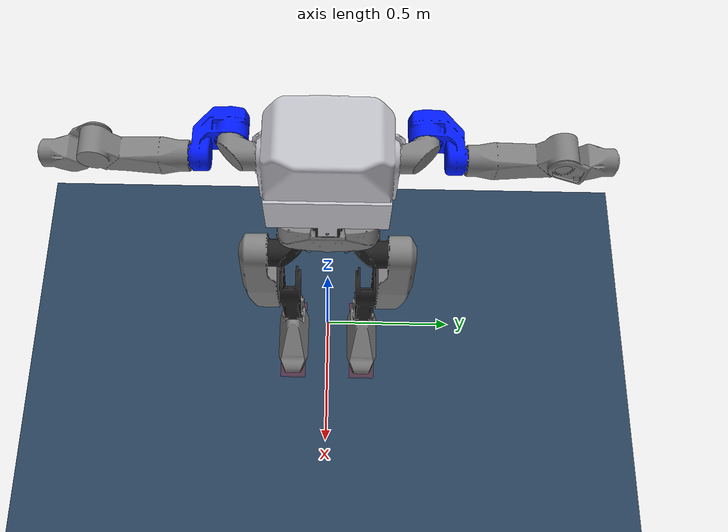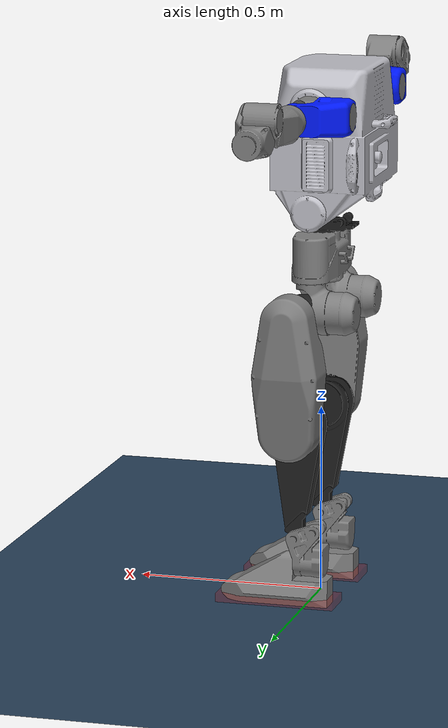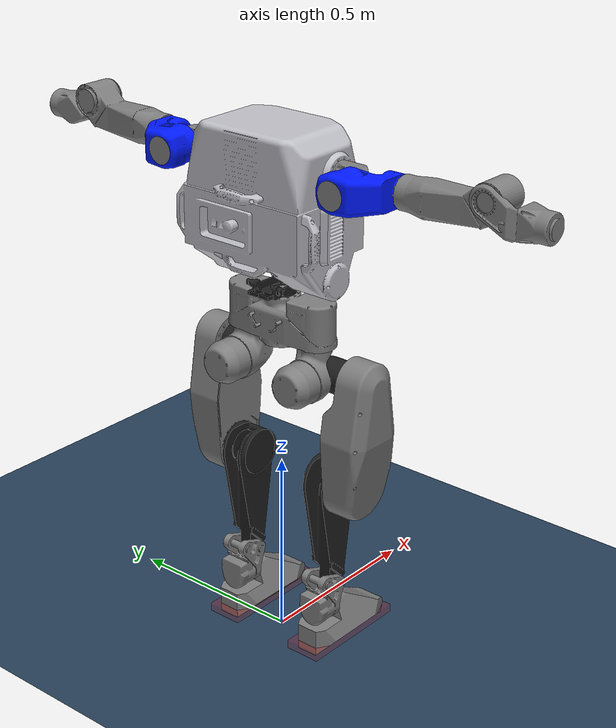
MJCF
<mujoco model="v0H">
  <compiler angle="radian"/>
  <option timestep="0.001"/>
  <option integrator="implicit"/>

  <visual>
    <rgba haze="0.15 0.25 0.35 1"/>
    <quality shadowsize="16384"/>
    <global azimuth="220" elevation="-40"/>
  </visual>

  <default>
    <light castshadow="false" />
    <default class="unused"/>
  </default>

  <!-- Default values defined for geom.-->
  <default>
    <geom  solref='0.02 1' friction='0.6 0.1 0.02'/>
    <default class='collision'>
      <geom group="3" contype='1' conaffinity='1' condim='6' rgba="0 1 0 0.6"/>
    </default>
    <default class="visual">
      <geom group="0" type="mesh" contype="0" conaffinity="0"/>
    </default>
  </default>

  <!-- Default values defined for joints.-->
  <default>
    <joint type="hinge" pos="0 0 0" limited="true"/>
    <default class="A71">
        <joint armature="0.47767" damping="0.5" frictionloss="0.5"/>
        <position forcerange="-51 51"/>
    </default>
    <default class="A900">
        <joint armature="0.3476425" damping="2.0" frictionloss="1.0"/>
        <position forcerange="-120 120"/>
    </default>
    <default class="D110a">
        <joint armature="0.77158" damping="10.0" frictionloss="10.0"/>
        <position forcerange="-190 190"/>
    </default>
    <default class="B903">
        <joint armature="0.8899648" damping="5.0" frictionloss="2.0"/>
        <position forcerange="-116 116"/>
    </default>
    <default class="C806">
        <joint armature="0.41815" damping="5.0" frictionloss="2.0"/>
        <position forcerange="-91 91"/>
    </default>
  </default>

  <asset>
    <texture name="grid" type="2d" builtin="checker" rgb1="0.1 0.2 0.3" rgb2="0.2 0.3 0.4" width="512" height="512"/>
    <material name="grid" class="unused" texture="grid" texrepeat="1 1" texuniform="true" reflectance="0.1"/>

    <texture type="2d" name="torso" file="../mesh/torso/silver.png"/>
    <texture type="2d" name="pelvis" file="../mesh/pelvis/mattBlack.png"/>

    <mesh name="torso" class="unused" file="../mesh/torso/torso_blue.obj" scale="1 1 1" />
    <mesh name="torsopitch" class="unused" file="../mesh/torso/TorsoPitchLink.obj" scale="1 1 1" />
    <mesh name="torsoyaw" class="unused" file="../mesh/torso/TorsoYawLink.obj" scale="1 1 1" />
    <mesh name="pelvis" class="unused" file="../mesh/pelvis/pelvis.obj" scale="1 1 1"/>
    <mesh name="foot" class="unused" file="../mesh/foot/Footlink_Narrow_Col.obj" scale="1 1 1"/>
    <mesh name="leftAnklePitchLink" class="unused" file="../mesh/legs/leftAnklePitchLink.obj" scale="1 1 1"/>
    <mesh name="leftHipPitchLink" class="unused" file="../mesh/legs/leftHipPitchLink.obj" scale="1 1 1"/>
    <mesh name="leftHipRollLink" class="unused" file="../mesh/legs/leftHipRollLink.obj" scale="1 1 1"/>
    <mesh name="leftHipYawLink" class="unused" file="../mesh/legs/leftHipYawLink.obj" scale="1 1 1"/>
    <mesh name="leftKneePitchLink" class="unused" file="../mesh/legs/leftKneePitchLink.obj" scale="1 1 1"/>
    <mesh name="rightAnklePitchLink" class="unused" file="../mesh/legs/rightAnklePitchLink.obj" scale="1 1 1"/>
    <mesh name="rightHipPitchLink" class="unused" file="../mesh/legs/rightHipPitchLink.obj" scale="1 1 1"/>
    <mesh name="rightHipRollLink" class="unused" file="../mesh/legs/rightHipRollLink.obj" scale="1 1 1"/>
    <mesh name="rightHipYawLink" class="unused" file="../mesh/legs/rightHipYawLink.obj" scale="1 1 1"/>
    <mesh name="rightKneePitchLink" class="unused" file="../mesh/legs/rightKneePitchLink.obj" scale="1 1 1"/>
    <mesh name="rightShoulderPitchLink" class="unused" file="../mesh/arms/rightShoulderPitchLink.obj" scale="1 1 1"/>
    <mesh name="rightShoulderRollLink" class="unused" file="../mesh/arms/rightShoulderRollLink.obj" scale="1 1 1"/>
    <mesh name="rightShoulderYawLink" class="unused" file="../mesh/arms/rightShoulderYawLink.obj" scale="1 1 1"/>
    <mesh name="rightElbowLink" class="unused" file="../mesh/arms/rightElbowLink.obj" scale="1 1 1"/>
    <mesh name="rightWristRollLink" class="unused" file="../mesh/arms/rightWristRollLink.obj" scale="1 1 1"/>
    <mesh name="leftShoulderPitchLink" class="unused" file="../mesh/arms/leftShoulderPitchLink.obj" scale="1 1 1"/>
    <mesh name="leftShoulderRollLink" class="unused" file="../mesh/arms/leftShoulderRollLink.obj" scale="1 1 1"/>
    <mesh name="leftShoulderYawLink" class="unused" file="../mesh/arms/leftShoulderYawLink.obj" scale="1 1 1"/>
    <mesh name="leftElbowLink" class="unused" file="../mesh/arms/leftElbowLink.obj" scale="1 1 1"/>

    <material name="torso" texture="torso"/>
    <material name="pelvis" texture="pelvis"/>
    <material name="mattBlack" texture="pelvis"/>
    <material name="grey" rgba="0.4 0.4 0.4 1" />
    <material name="deepgray" rgba="0.5 0.5 0.5 1"/>
    <material name="blue" rgba="0 0.1 1 1"/>
    <material name="ctorange" rgba="1.0 0.431 0.1176 1"/>
  </asset>

  <worldbody>
    <light directional="true" diffuse=".8 .8 .8" pos="0 0 10" dir="0 0 -10"  ambient="0.5 0.5 0.5"/>
    <geom name="floor" class="unused" type="plane" condim="6" size="0 0 0.05" material="grid" pos="0 0 0"/>
    <body name="pelvis" pos="0 0 0.95">
      <inertial pos="0 0 -0.0367" mass="7.0" diaginertia="0.06960 0.01306 0.06840"/>
      <joint type="free" name="floating_base" />
      <geom name="pelvis_visual" class="visual" type="mesh" pos="0 0 0" euler="0 -0 0" mesh="pelvis"/>
      <site name="imu_pelvis" size="0.01" pos="0.0 0 -0.086" rgba="1 0 0 0.3"/>
      <body name="torsoYawLink" pos="0 0 0.1015">
        <inertial pos="0.0153374 0 -0.0376228" quat="0.0220714 0.798247 0.00912114 0.601856" mass="0.7907" diaginertia="0.00261498 0.0023003 0.00112455"/>
        <joint class="A900" name="torsoYaw" pos="0 0 0" axis="0 0 1" range="-1.58 1.58"/>
        <geom name="torsoyaw_visual" class="visual" type="mesh" pos="0 0 0" euler="0 -0 0" mesh="torsoyaw" material="mattBlack"/>
        <body name="torsoPitchLink" pos="0.05 0 0">
          <inertial pos="6.183e-05 0 6.183e-05" quat="0.5 0.5 -0.5 0.5" mass="0.0967" diaginertia="2.601e-05 1.492e-05 1.492e-05"/>
          <joint class="A900" name="torsoPitch" pos="0 0 0" axis="0 1 0" range="-0.0873 0.5263"/>
          <geom name="torsopitch_visual" class="visual" type="mesh" pos="0 0 0" euler="0 -0 0" mesh="torsopitch"/>
          <body name="torso" pos="0 0 0">
            <inertial pos="-0.0673 0.0019 0.149" quat="0.707107 0.707107 0 0" mass="18" diaginertia="0.6147 0.4072 0.3722"/>
            <joint class="A900" name="torsoRoll" pos="0 0 0" axis="1 0 0" range="-0.1396 0.1396"/>
            <geom name="torso_visual" class="visual" type="mesh" pos="0 0 0" euler="0 -0 0" mesh="torso" material="torso"/>
            <geom name="torso_collision" class="collision" type="mesh" mesh="torso"/>
            <body name="rightShoulderPitchLink" pos="-0.0635 -0.2675 0.271">
              <inertial pos="-0.0725 0.00456 1e-05" quat="0.141851 0.685643 -0.173312 0.692629" mass="1.8398" diaginertia="0.00347904 0.00345925 0.0019647"/>
              <joint class="B903" name="rightShoulderPitch"  pos="0 0 0" axis="0 1 0" range="-3.14 3.14"/>
              <geom type="mesh" mesh="rightShoulderPitchLink" class="visual"/>
              <geom size="0.02" pos="-0.13 0 0" class="collision"/>

              <body name="rightShoulderRollLink">
                <inertial pos="-0.0575532 -0.0471505 6.46e-06" quat="-0.255978 0.659147 0.255978 0.659147" mass="0.9045" diaginertia="0.003288 0.00321587 0.00151913"/>
                <joint class="B903" name="rightShoulderRoll" pos="0 0 0" axis="1 0 0" range="-3.14 3.14"/>
                <geom type="mesh" mesh="rightShoulderRollLink" material="blue" class="visual"/>
                <geom size="0.02" rgba="0 0.1 1 1" class="collision"/>

                <body name="rightShoulderYawLink">
                  <inertial pos="-0.00231875 -0.247118 0.016612" quat="0.625334 0.739344 0.19825 -0.151741" mass="3.3513" diaginertia="0.0384195 0.0376213 0.00354914"/>
                  <joint class="C806" name="rightShoulderYaw" pos="0 0 0" axis="0 1 0" range="-3.14 3.14"/>
                  <geom type="mesh" mesh="rightShoulderYawLink" material="deepgray" class="visual"/>
                  <geom size="0.05" pos="0 -0.2 0" class="collision"/>

                  <body name="rightElbowLink" pos="0 -0.3585 0.042">
                    <inertial pos="-0.00512164 -0.0987476 -0.036951" quat="0.650051 0.636503 0.149946 -0.387057" mass="1.4726" diaginertia="0.00333702 0.0028979 0.00139208"/>
                    <joint class="C806" name="rightElbow" pos="0 0 0" axis="1 0 0" range="-3.1 0.3822"/>
                    <geom type="mesh" mesh="rightElbowLink" class="visual"/>
                    <geom size="0.05" pos="0 -0.11 -0.05" rgba="1 0.431 0.1176 1" class="collision"/>
                  </body>
                </body>
              </body>
            </body>

            <body name="leftShoulderPitchLink" pos="-0.0635 0.2675 0.271">
              <inertial pos="-0.0725 -0.00456 1e-05" quat="-0.15762 0.689315 0.15762 0.689315" mass="1.8398" diaginertia="0.003479 0.0034593 0.0019647"/>
              <joint class="B903" name="leftShoulderPitch" pos="0 0 0" axis="0 1 0" range="-3.14 3.14"/>
              <geom type="mesh" mesh="leftShoulderPitchLink" class="visual"/>
              <geom size="0.02" pos="-0.13 0 0" class="collision"/>

              <body name="leftShoulderRollLink">
                <inertial pos="-0.0575532 0.0471505 6.46e-06" quat="0.255978 0.659147 -0.255978 0.659147" mass="0.9045" diaginertia="0.003288 0.00321587 0.00151913"/>
                <joint class="B903" name="leftShoulderRoll" pos="0 0 0" axis="1 0 0" range="-3.14 3.14"/>
                <geom type="mesh" mesh="leftShoulderRollLink" material="blue" class="visual"/>
                <geom size="0.02" rgba="0 0.1 1 1" class="collision"/>

                <body name="leftShoulderYawLink">
                  <inertial pos="-0.00231875 0.247118 0.016612" quat="0.739344 0.625334 0.151741 -0.19825" mass="3.3513" diaginertia="0.0384195 0.0376213 0.00354914"/>
                  <joint class="C806" name="leftShoulderYaw" pos="0 0 0" axis="0 1 0" range="-3.14 3.14"/>
                  <geom type="mesh" mesh="leftShoulderYawLink" material="deepgray" class="visual"/>
                  <geom size="0.05" pos="0 0.2 0" class="collision"/>

                  <body name="leftElbowLink" pos="0 0.3585 0.042">
                    <inertial pos="-0.00512164 0.0987476 -0.036951" quat="0.636503 0.650051 0.387057 -0.149946" mass="1.4726" diaginertia="0.00333702 0.0028979 0.00139208"/>
                    <joint class="C806" name="leftElbow" pos="0 0 0" axis="1 0 0" range="-0.3822 3.1"/>
                    <geom type="mesh" mesh="leftElbowLink" class="visual"/>
                    <geom size="0.05" pos="0 -0.11 -0.05" rgba="1 0.431 0.1176 1" class="collision"/>
                  </body>
                </body>
              </body>
            </body>
          </body>
        </body>
      </body>
      <body name="rightHipYawLink" pos="0 -0.115 -0.1695">
      <inertial pos="-0.061 0.00091 0.00301" quat="0.95233 -0.0550631 -0.266837 0.137233" mass="2.9525" diaginertia="0.00540505 0.00473386 0.00413109"/>
        <joint class="A900" name="rightHipYaw" pos="0 0 0" axis="0 0 1" range="-1.58 1.58"/>
        <geom name="rightHipYawLink_visual" class="visual" type="mesh" pos="0 0 0" euler="0 -0 0" mesh="rightHipYawLink"/>
        <geom type="sphere" class="collision" size="0.05"/>
        <body name="rightHipRollLink" pos="0.03 0 0">
          <inertial pos="-0.018719 -0.028408 1.4e-05" quat="0.673556 0.673556 -0.215228 -0.215228" mass="0.4415" diaginertia="0.00119365 0.001089 0.00066235"/>
          <joint class="D110a" name="rightHipRoll" pos="0 0 0" axis="1 0 0" range="-0.4695 0.5236"/>
          <geom name="rightHipRollLink_visual" class="visual" type="mesh" pos="0 0 0" euler="0 -0 0" mesh="rightHipRollLink" material="mattBlack"/>
          <body name="rightHipPitchLink">
            <inertial pos="2e-05 -0.11103 -0.10304" quat="0.706641 -0.0140271 0.0140429 0.707294" mass="8.3971" diaginertia="0.0961902 0.088623 0.0186018"/>
            <joint class="D110a" name="rightHipPitch" pos="0 0 0" axis="0 1 0" range="-1.58 1.58"/>
            <geom name="rightHipPitchLink_visual" class="visual" type="mesh" pos="0 0 0" euler="0 -0 0" mesh="rightHipPitchLink"/>
            <geom type="cylinder" class="collision" size="0.06 0.08" pos="0 -0.14 -0.16"/>
            <body name="rightKneePitchLink" pos="0 -0.025 -0.3">
              <inertial pos="-0.00084 -0.039526 -0.040395" quat="0.93401 -0.112865 -0.049967 -0.335245" mass="5.0424" diaginertia="0.0424065 0.0418086 0.00886594"/>
              <joint class="D110a" name="rightKneePitch" pos="0 0 0" axis="0 1 0" range="-0.1 2.7925" armature="0.672132"/>
              <geom name="rightKneePitch_visual" class="visual" type="mesh" pos="0 0 0" euler="0 -0 0" mesh="rightKneePitchLink" material="mattBlack"/>
              <geom type="cylinder" class="collision" size="0.04 0.08" pos="0 0 -0.16"/>
              <body name="rightAnklePitchLink" pos="0 0 -0.3">
                <inertial pos="-0.028715 0 -0.040596" quat="0.998963 -0.0041746 -0.027338 0.0361773" mass="1.76985" diaginertia="0.00368875 0.00368405 0.0017922"/>
                <joint class="D110a" name="rightAnklePitch" pos="0 0 0" axis="0 1 0" range="-1.2217 0.4363"/>
                <geom name="rightAnklePitchLink_visual" class="visual" type="mesh" pos="0 0 0" euler="0 -0 0" mesh="rightAnklePitchLink"/>
                <body name="rightFoot" pos="0 0 -0.07">
                  <inertial pos="0.0421626 -2.98236e-06 -0.0518451" quat="0.503931 0.495965 0.496022 0.504018" mass="1.8403" diaginertia="0.00893264 0.0083695 0.00200514"/>
                  <joint class="A71" name="rightAnkleRoll" pos="0 0 0" axis="1 0 0" range="-0.7854 0.7854"/>
                  <geom name="rightFoot_visual" class="visual" type="mesh" pos="0 0 0" euler="0 -0 0" mesh="foot"/>
                  <geom name="rightFoot_collision" class="collision" type="mesh" mesh="foot"/>
                  <site name="rightFoot_contact" type="box" size="0.16 0.05 0.02" pos="0.05 0 -0.11" rgba="1 0 0 0.1"/>
                </body>
              </body>
            </body>
          </body>
        </body>
      </body>
      <body name="leftHipYawLink" pos="0 0.115 -0.1695">
        <inertial pos="-0.061 -0.00091 0.00301" quat="0.95233 0.0550631 -0.266837 -0.137233" mass="2.9525" diaginertia="0.00540505 0.00473386 0.00413109"/>
        <joint class="A900" name="leftHipYaw" pos="0 0 0" axis="0 0 1" range="-1.58 1.58"/>
        <geom name="leftHipYawLink_visual" class="visual" type="mesh" pos="0 0 0" euler="0 -0 0" mesh="leftHipYawLink"/>
        <geom type="sphere" class="collision" size="0.05"/>
        <body name="leftHipRollLink" pos="0.03 0 0">
          <inertial pos="-0.018719 0.028408 1.4e-05" quat="0.673556 0.673556 0.215228 0.215228" mass="0.4415" diaginertia="0.00119365 0.001089 0.00066235"/>
          <joint class="D110a" name="leftHipRoll" pos="0 0 0" axis="1 0 0" range="-0.5236 0.4695"/>
          <geom name="leftHipRollLink_visual" class="visual" type="mesh" pos="0 0 0" euler="0 -0 0" mesh="leftHipRollLink" material="mattBlack"/>
          <body name="leftHipPitchLink">
            <inertial pos="-2e-05 0.11103 -0.10304" quat="0.706641 0.0140271 -0.0140429 0.707294" mass="8.3971" diaginertia="0.0961902 0.088623 0.0186018"/>
            <joint class="D110a" name="leftHipPitch" pos="0 0 0" axis="0 1 0" range="-1.58 1.58"/>
            <geom name="leftHipPitchLink_visual" class="visual" type="mesh" pos="0 0 0" euler="0 -0 0" mesh="leftHipPitchLink"/>
            <geom type="cylinder" class="collision" size="0.06 0.08" pos="0 0.14 -0.16"/>
            <body name="leftKneePitchLink" pos="0 0.025 -0.3">
              <inertial pos="-0.00084 0.039526 -0.040395" quat="0.93401 0.112865 -0.049967 0.335245" mass="5.0424" diaginertia="0.0424065 0.0418086 0.00886594"/>
              <joint class="D110a" name="leftKneePitch" pos="0 0 0" axis="0 1 0" range="-0.1 2.7925" armature="0.672132"/>
              <geom name="leftKneePitch_visual" class="visual" type="mesh" pos="0 0 0" euler="0 -0 0" mesh="leftKneePitchLink" material="mattBlack"/>
              <geom type="cylinder" class="collision" size="0.04 0.08" pos="0 0 -0.16"/>
              <body name="leftAnklePitchLink" pos="0 0 -0.3">
                <inertial pos="-0.028715 0 -0.040596" quat="0.998963 -0.0041746 -0.027338 0.0361773" mass="1.76985" diaginertia="0.00368875 0.00368405 0.0017922"/>
                <joint class="D110a" name="leftAnklePitch" pos="0 0 0" axis="0 1 0" range="-1.2217 0.4363"/>
                <geom name="leftAnklePitchLink_visual" class="visual" type="mesh" pos="0 0 0" euler="0 -0 0" mesh="leftAnklePitchLink"/>
                <body name="leftFoot" pos="0 0 -0.07">
                  <inertial pos="0.0421626 -2.98236e-06 -0.0518451" quat="0.503931 0.495965 0.496022 0.504018" mass="1.8403" diaginertia="0.00893264 0.0083695 0.00200514"/>
                  <joint class="A71" name="leftAnkleRoll" pos="0 0 0" axis="1 0 0" range="-0.7854 0.7854"/>
                  <geom name="LeftFoot_visual" class="visual" type="mesh" pos="0 0 0" euler="0 -0 0" mesh="foot"/>
                  <geom name="leftFoot_collision" class="collision" type="mesh" mesh="foot"/>
                  <site name="leftFoot_contact" type="box" size="0.16 0.05 0.02" pos="0.05 0 -0.11" rgba="1 0 0 0.1"/>
                </body>
              </body>
            </body>
          </body>
        </body>
      </body>
    </body>
  </worldbody>

  <sensor>
    <!-- joint position -->
    <actuatorpos name='leftHipYawP' actuator='leftHipYaw'/>
    <actuatorpos name='rightHipYawP' actuator='rightHipYaw'/>
    <actuatorpos name='torsoYawP' actuator='torsoYaw'/>
    <actuatorpos name='leftHipRollP' actuator='leftHipRoll'/>
    <actuatorpos name='rightHipRollP' actuator='rightHipRoll'/>
    <actuatorpos name='torsoPitchP' actuator='torsoPitch'/>
    <actuatorpos name='leftHipPitchP' actuator='leftHipPitch'/>
    <actuatorpos name='rightHipPitchP' actuator='rightHipPitch'/>
    <actuatorpos name='torsoRollP' actuator='torsoRoll'/>
    <actuatorpos name='leftKneePitchP' actuator='leftKneePitch'/>
    <actuatorpos name='rightKneePitchP' actuator='rightKneePitch'/>
    <actuatorpos name='leftShoulderPitchP' actuator='leftShoulderPitch'/>
    <actuatorpos name='rightShoulderPitchP' actuator='rightShoulderPitch'/>
    <actuatorpos name='leftAnklePitchP' actuator='leftAnklePitch'/>
    <actuatorpos name='rightAnklePitchP' actuator='rightAnklePitch'/>
    <actuatorpos name='leftShoulderRollP' actuator='leftShoulderRoll'/>
    <actuatorpos name='rightShoulderRollP' actuator='rightShoulderRoll'/>
    <actuatorpos name='leftAnkleRollP' actuator='leftAnkleRoll'/>
    <actuatorpos name='rightAnkleRollP' actuator='rightAnkleRoll'/>
    <actuatorpos name='leftShoulderYawP' actuator='leftShoulderYaw'/>
    <actuatorpos name='rightShoulderYawP' actuator='rightShoulderYaw'/>
    <actuatorpos name='leftElbowP' actuator='leftElbow'/>
    <actuatorpos name='rightElbowP' actuator='rightElbow'/>

    <!-- joint velocity -->
    <actuatorvel name='leftHipYawV' actuator='leftHipYaw'/>
    <actuatorvel name='rightHipYawV' actuator='rightHipYaw'/>
    <actuatorvel name='torsoYawV' actuator='torsoYaw'/>
    <actuatorvel name='leftHipRollV' actuator='leftHipRoll'/>
    <actuatorvel name='rightHipRollV' actuator='rightHipRoll'/>
    <actuatorvel name='torsoPitchV' actuator='torsoPitch'/>
    <actuatorvel name='leftHipPitchV' actuator='leftHipPitch'/>
    <actuatorvel name='rightHipPitchV' actuator='rightHipPitch'/>
    <actuatorvel name='torsoRollV' actuator='torsoRoll'/>
    <actuatorvel name='leftKneePitchV' actuator='leftKneePitch'/>
    <actuatorvel name='rightKneePitchV' actuator='rightKneePitch'/>
    <actuatorvel name='leftShoulderPitchV' actuator='leftShoulderPitch'/>
    <actuatorvel name='rightShoulderPitchV' actuator='rightShoulderPitch'/>
    <actuatorvel name='leftAnklePitchV' actuator='leftAnklePitch'/>
    <actuatorvel name='rightAnklePitchV' actuator='rightAnklePitch'/>
    <actuatorvel name='leftShoulderRollV' actuator='leftShoulderRoll'/>
    <actuatorvel name='rightShoulderRollV' actuator='rightShoulderRoll'/>
    <actuatorvel name='leftAnkleRollV' actuator='leftAnkleRoll'/>
    <actuatorvel name='rightAnkleRollV' actuator='rightAnkleRoll'/>
    <actuatorvel name='leftShoulderYawV' actuator='leftShoulderYaw'/>
    <actuatorvel name='rightShoulderYawV' actuator='rightShoulderYaw'/>
    <actuatorvel name='leftElbowV' actuator='leftElbow'/>
    <actuatorvel name='rightElbowV' actuator='rightElbow'/>

    <!-- joint force -->
    <actuatorfrc name='lefthipyawv' actuator='leftHipYaw'/>
    <actuatorfrc name='righthipyawv' actuator='rightHipYaw'/>
    <actuatorfrc name='torsoyawv' actuator='torsoYaw'/>
    <actuatorfrc name='lefthiprollv' actuator='leftHipRoll'/>
    <actuatorfrc name='righthiprollV' actuator='rightHipRoll'/>
    <actuatorfrc name='torsopitchv' actuator='torsoPitch'/>
    <actuatorfrc name='lefthippitchV' actuator='leftHipPitch'/>
    <actuatorfrc name='righthippitchV' actuator='rightHipPitch'/>
    <actuatorfrc name='torsorollv' actuator='torsoRoll'/>
    <actuatorfrc name='leftkneepitchV' actuator='leftKneePitch'/>
    <actuatorfrc name='rightkneepitchV' actuator='rightKneePitch'/>
    <actuatorfrc name='leftshoulderpitchV' actuator='leftShoulderPitch'/>
    <actuatorfrc name='rightshoulderpitchV' actuator='rightShoulderPitch'/>
    <actuatorfrc name='leftanklepitchV' actuator='leftAnklePitch'/>
    <actuatorfrc name='rightanklepitchV' actuator='rightAnklePitch'/>
    <actuatorfrc name='leftshoulderrollV' actuator='leftShoulderRoll'/>
    <actuatorfrc name='rightshoulderrollV' actuator='rightShoulderRoll'/>
    <actuatorfrc name='leftanklerollV' actuator='leftAnkleRoll'/>
    <actuatorfrc name='rightanklerollV' actuator='rightAnkleRoll'/>
    <actuatorfrc name='leftshoulderyawV' actuator='leftShoulderYaw'/>
    <actuatorfrc name='rightshoulderyawV' actuator='rightShoulderYaw'/>
    <actuatorfrc name='leftelbowV' actuator='leftElbow'/>
    <actuatorfrc name='rightelbowV' actuator='rightElbow'/>

    <!-- IMU on pelvis -->
    <framepos name='pos_pelvis' objtype='site' noise='0.0' objname='imu_pelvis'/>
    <framequat name='ori_pelvis' objtype='site' noise='0.0' objname='imu_pelvis'/>
    <velocimeter name='linvel_pelvis' noise='0.0' site='imu_pelvis'/>
    <gyro name='angvel_pelvis' noise='0.0' site='imu_pelvis'/>
    <accelerometer name='linacc_pelvis' noise='0.0' site='imu_pelvis'/>

    <!-- Foot contact -->
    <touch name='left_foot_contact' site='leftFoot_contact'/>
    <touch name='right_foot_contact' site='rightFoot_contact'/>

  </sensor>

</mujoco>
